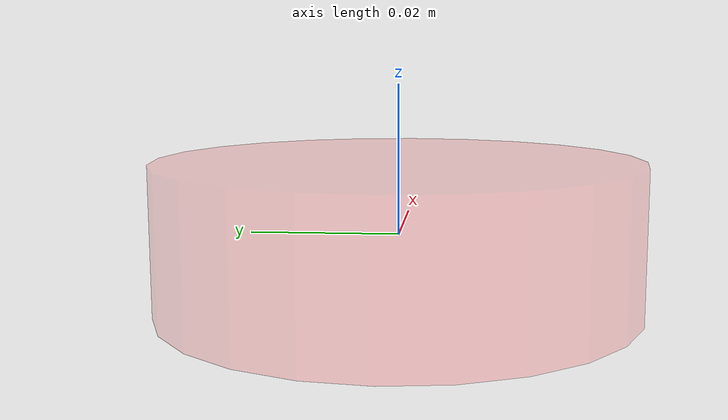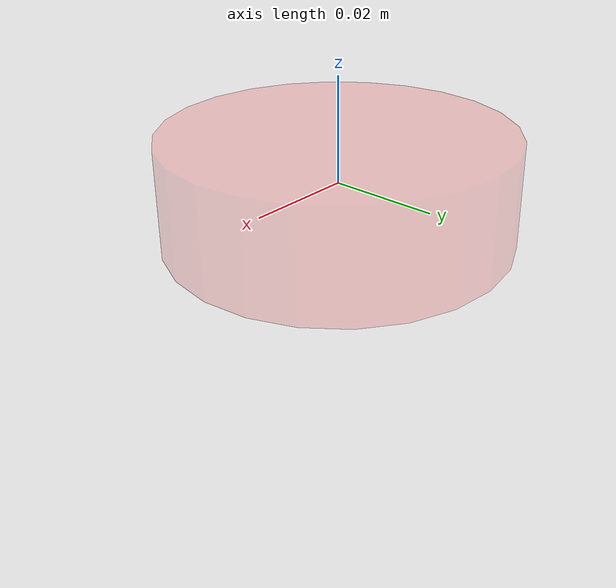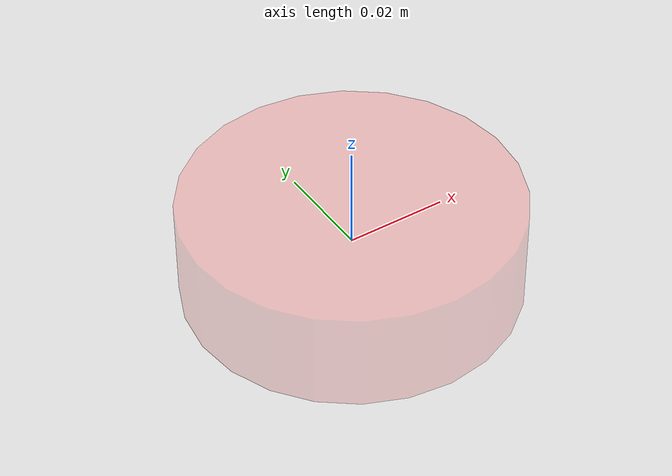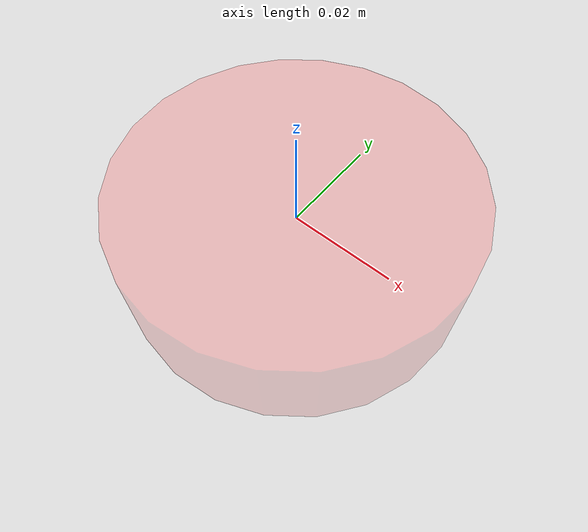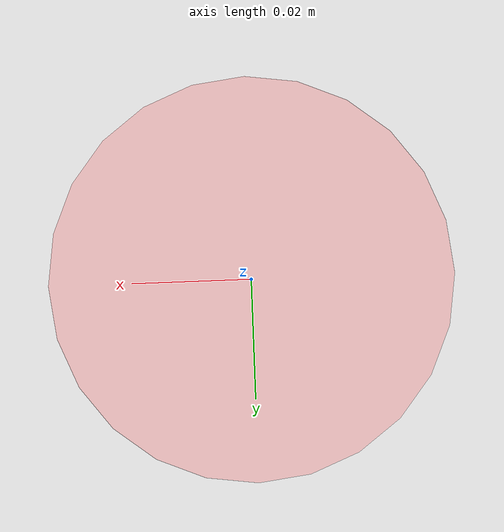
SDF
<?xml version="1.0"?>
<sdf version="1.7">
  <model name="cake">
    <link name="cake">
      <pose>0 0 0 0 0 0</pose>
      <inertial>
        <pose>0 0 0 0 0 0</pose>
        <mass>0.01</mass>
        <inertia>
          <ixx>0.000208</ixx>
          <ixy>0</ixy>
          <ixz>0</ixz>
          <iyy>0.000208</iyy>
          <iyz>0</iyz>
          <izz>0.000208</izz>
        </inertia>
      </inertial>
      <visual name="visual">
        <pose>0 0 0 0 0 0</pose>
        <geometry>
          <cylinder>
            <length>0.02</length>
  	    <radius>0.0325</radius>
          </cylinder>
        </geometry>
        <material>
          <diffuse>1 0.1 0.1 0.1</diffuse>
        </material>
      </visual>
      <collision name="collision">
        <pose>0 0 0 0 0 0</pose>
        <geometry>
          <cylinder>
            <length>0.02</length>
  	    <radius>0.0325</radius>
          </cylinder>
        </geometry>
        <drake:proximity_properties>
          <drake:point_contact_stiffness>1</drake:point_contact_stiffness>
          <drake:compliant_hydroelastic/>
          <drake:hydroelastic_modulus>3e7</drake:hydroelastic_modulus>
          <drake:mesh_resolution_hint>0.0005</drake:mesh_resolution_hint>
	  <drake:hunt_crossley_dissipation>1.25</drake:hunt_crossley_dissipation>
          <drake:mu_dynamic>0.9</drake:mu_dynamic>
          <drake:mu_static>0.9</drake:mu_static>
        </drake:proximity_properties>
      </collision>
    </link>

  </model>
</sdf>
